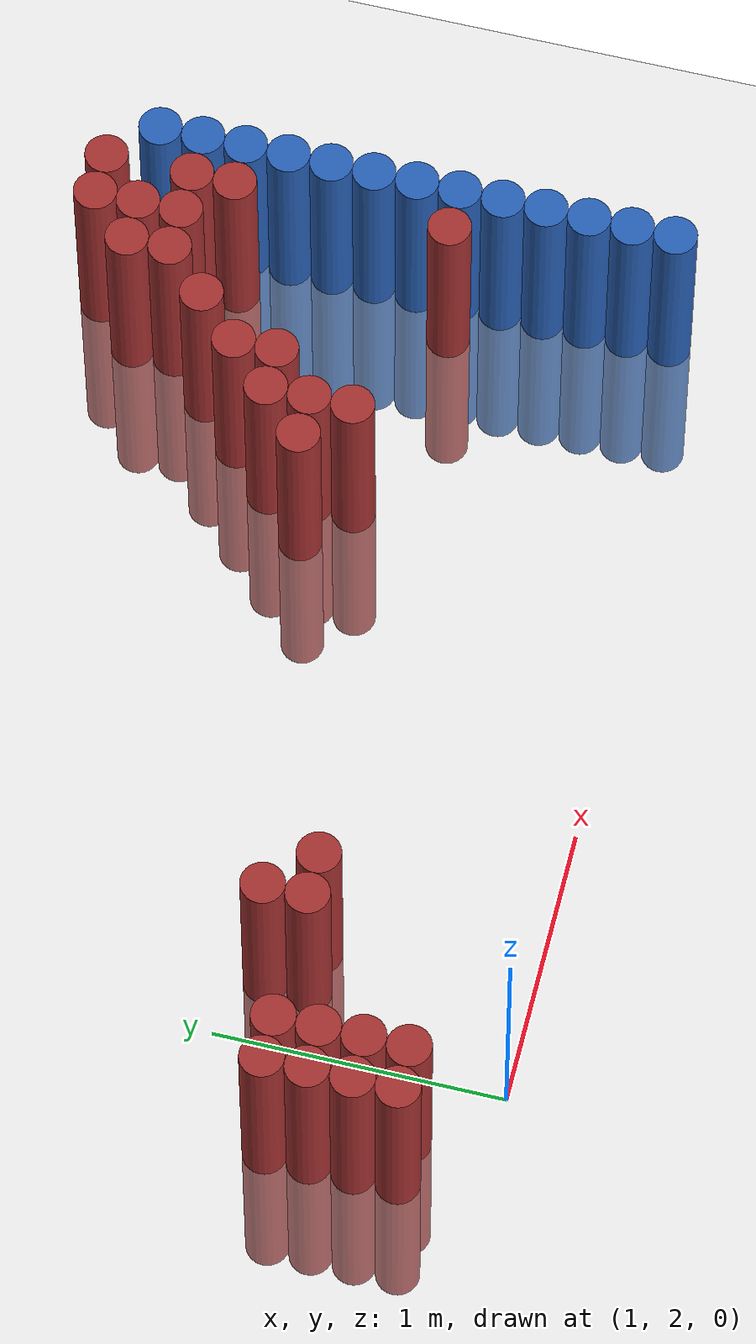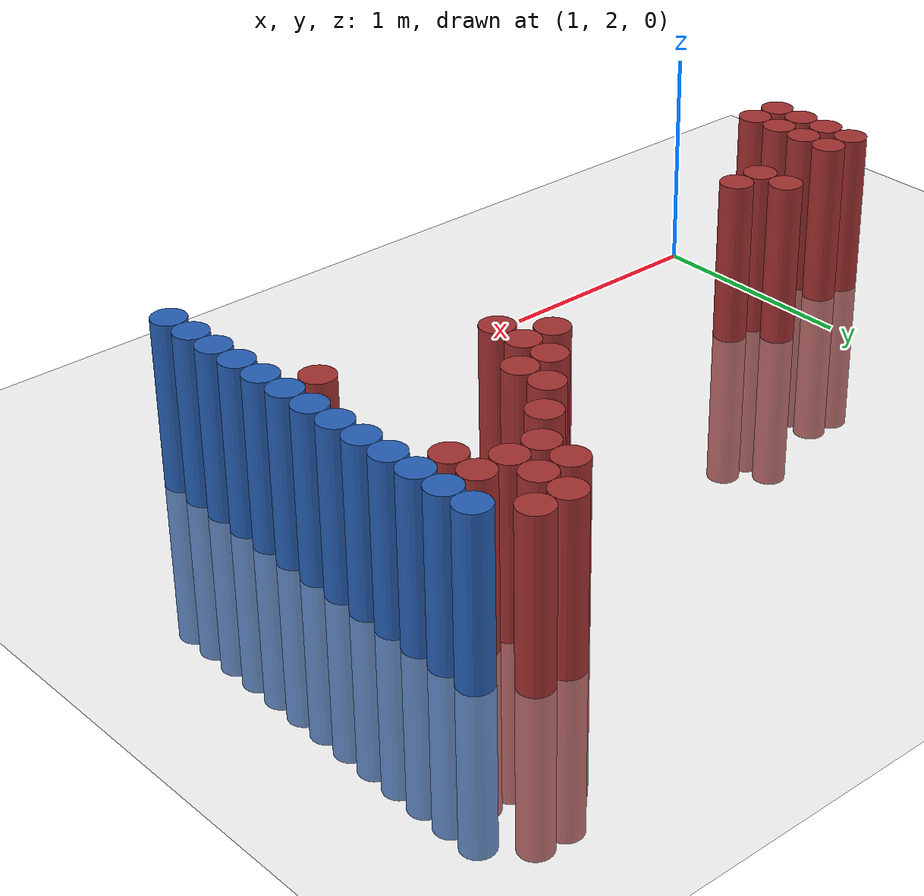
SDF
<sdf version="1.6">
 <world name="default">
  <model name="ground_plane">
   <static>1</static>
   <link name="link">
    <collision name="collision">
     <geometry><plane><normal>0 0 1</normal><size>100 100</size></plane></geometry>
     <surface><friction><ode><mu>100</mu><mu2>50</mu2></ode></friction></surface>
    </collision>
    <visual name="visual">
     <cast_shadows>0</cast_shadows>
     <geometry><plane><normal>0 0 1</normal><size>100 100</size></plane></geometry>
     <material>
      <script><uri>file://media/materials/scripts/gazebo.material</uri><name>Gazebo/Grey</name></script>
     </material>
    </visual>
   </link>
  </model>
  <model name="unit_cylinder_142">
   <static>1</static>
   <pose>3.925000 2.125000 0.000000 0.000000 0.000000 0.000000</pose>
   <link name="link">
    <inertial>
     <mass>1</mass>
     <inertia><ixx>0.145833</ixx><ixy>0</ixy><ixz>0</ixz><iyy>0.145833</iyy><iyz>0</iyz><izz>0.125</izz></inertia>
    </inertial>
    <collision name="collision">
     <geometry><cylinder><radius>0.075000</radius><length>1.5</length></cylinder></geometry>
    </collision>
    <visual name="visual">
     <geometry><cylinder><radius>0.075000</radius><length>1.5</length></cylinder></geometry>
     <material>
      <ambient>0.152000 0.379000 0.720000 1</ambient>
      <diffuse>0.152000 0.379000 0.720000 1</diffuse>
     </material>
     <material>
      <script><name>Gazebo/Grey</name><uri>file://media/materials/scripts/gazebo.material</uri></script>
     </material>
    </visual>
   </link>
  </model>
  <model name="unit_cylinder_144">
   <static>1</static>
   <pose>3.925000 2.275000 0.000000 0.000000 0.000000 0.000000</pose>
   <link name="link">
    <inertial>
     <mass>1</mass>
     <inertia><ixx>0.145833</ixx><ixy>0</ixy><ixz>0</ixz><iyy>0.145833</iyy><iyz>0</iyz><izz>0.125</izz></inertia>
    </inertial>
    <collision name="collision">
     <geometry><cylinder><radius>0.075000</radius><length>1.5</length></cylinder></geometry>
    </collision>
    <visual name="visual">
     <geometry><cylinder><radius>0.075000</radius><length>1.5</length></cylinder></geometry>
     <material>
      <ambient>0.152000 0.379000 0.720000 1</ambient>
      <diffuse>0.152000 0.379000 0.720000 1</diffuse>
     </material>
     <material>
      <script><name>Gazebo/Grey</name><uri>file://media/materials/scripts/gazebo.material</uri></script>
     </material>
    </visual>
   </link>
  </model>
  <model name="unit_cylinder_146">
   <static>1</static>
   <pose>3.925000 2.425000 0.000000 0.000000 0.000000 0.000000</pose>
   <link name="link">
    <inertial>
     <mass>1</mass>
     <inertia><ixx>0.145833</ixx><ixy>0</ixy><ixz>0</ixz><iyy>0.145833</iyy><iyz>0</iyz><izz>0.125</izz></inertia>
    </inertial>
    <collision name="collision">
     <geometry><cylinder><radius>0.075000</radius><length>1.5</length></cylinder></geometry>
    </collision>
    <visual name="visual">
     <geometry><cylinder><radius>0.075000</radius><length>1.5</length></cylinder></geometry>
     <material>
      <ambient>0.152000 0.379000 0.720000 1</ambient>
      <diffuse>0.152000 0.379000 0.720000 1</diffuse>
     </material>
     <material>
      <script><name>Gazebo/Grey</name><uri>file://media/materials/scripts/gazebo.material</uri></script>
     </material>
    </visual>
   </link>
  </model>
  <model name="unit_cylinder_148">
   <static>1</static>
   <pose>3.925000 2.575000 0.000000 0.000000 0.000000 0.000000</pose>
   <link name="link">
    <inertial>
     <mass>1</mass>
     <inertia><ixx>0.145833</ixx><ixy>0</ixy><ixz>0</ixz><iyy>0.145833</iyy><iyz>0</iyz><izz>0.125</izz></inertia>
    </inertial>
    <collision name="collision">
     <geometry><cylinder><radius>0.075000</radius><length>1.5</length></cylinder></geometry>
    </collision>
    <visual name="visual">
     <geometry><cylinder><radius>0.075000</radius><length>1.5</length></cylinder></geometry>
     <material>
      <ambient>0.152000 0.379000 0.720000 1</ambient>
      <diffuse>0.152000 0.379000 0.720000 1</diffuse>
     </material>
     <material>
      <script><name>Gazebo/Grey</name><uri>file://media/materials/scripts/gazebo.material</uri></script>
     </material>
    </visual>
   </link>
  </model>
  <model name="unit_cylinder_150">
   <static>1</static>
   <pose>3.925000 2.725000 0.000000 0.000000 0.000000 0.000000</pose>
   <link name="link">
    <inertial>
     <mass>1</mass>
     <inertia><ixx>0.145833</ixx><ixy>0</ixy><ixz>0</ixz><iyy>0.145833</iyy><iyz>0</iyz><izz>0.125</izz></inertia>
    </inertial>
    <collision name="collision">
     <geometry><cylinder><radius>0.075000</radius><length>1.5</length></cylinder></geometry>
    </collision>
    <visual name="visual">
     <geometry><cylinder><radius>0.075000</radius><length>1.5</length></cylinder></geometry>
     <material>
      <ambient>0.152000 0.379000 0.720000 1</ambient>
      <diffuse>0.152000 0.379000 0.720000 1</diffuse>
     </material>
     <material>
      <script><name>Gazebo/Grey</name><uri>file://media/materials/scripts/gazebo.material</uri></script>
     </material>
    </visual>
   </link>
  </model>
  <model name="unit_cylinder_152">
   <static>1</static>
   <pose>3.925000 2.875000 0.000000 0.000000 0.000000 0.000000</pose>
   <link name="link">
    <inertial>
     <mass>1</mass>
     <inertia><ixx>0.145833</ixx><ixy>0</ixy><ixz>0</ixz><iyy>0.145833</iyy><iyz>0</iyz><izz>0.125</izz></inertia>
    </inertial>
    <collision name="collision">
     <geometry><cylinder><radius>0.075000</radius><length>1.5</length></cylinder></geometry>
    </collision>
    <visual name="visual">
     <geometry><cylinder><radius>0.075000</radius><length>1.5</length></cylinder></geometry>
     <material>
      <ambient>0.152000 0.379000 0.720000 1</ambient>
      <diffuse>0.152000 0.379000 0.720000 1</diffuse>
     </material>
     <material>
      <script><name>Gazebo/Grey</name><uri>file://media/materials/scripts/gazebo.material</uri></script>
     </material>
    </visual>
   </link>
  </model>
  <model name="unit_cylinder_154">
   <static>1</static>
   <pose>3.925000 3.025000 0.000000 0.000000 0.000000 0.000000</pose>
   <link name="link">
    <inertial>
     <mass>1</mass>
     <inertia><ixx>0.145833</ixx><ixy>0</ixy><ixz>0</ixz><iyy>0.145833</iyy><iyz>0</iyz><izz>0.125</izz></inertia>
    </inertial>
    <collision name="collision">
     <geometry><cylinder><radius>0.075000</radius><length>1.5</length></cylinder></geometry>
    </collision>
    <visual name="visual">
     <geometry><cylinder><radius>0.075000</radius><length>1.5</length></cylinder></geometry>
     <material>
      <ambient>0.152000 0.379000 0.720000 1</ambient>
      <diffuse>0.152000 0.379000 0.720000 1</diffuse>
     </material>
     <material>
      <script><name>Gazebo/Grey</name><uri>file://media/materials/scripts/gazebo.material</uri></script>
     </material>
    </visual>
   </link>
  </model>
  <model name="unit_cylinder_156">
   <static>1</static>
   <pose>3.925000 3.175000 0.000000 0.000000 0.000000 0.000000</pose>
   <link name="link">
    <inertial>
     <mass>1</mass>
     <inertia><ixx>0.145833</ixx><ixy>0</ixy><ixz>0</ixz><iyy>0.145833</iyy><iyz>0</iyz><izz>0.125</izz></inertia>
    </inertial>
    <collision name="collision">
     <geometry><cylinder><radius>0.075000</radius><length>1.5</length></cylinder></geometry>
    </collision>
    <visual name="visual">
     <geometry><cylinder><radius>0.075000</radius><length>1.5</length></cylinder></geometry>
     <material>
      <ambient>0.152000 0.379000 0.720000 1</ambient>
      <diffuse>0.152000 0.379000 0.720000 1</diffuse>
     </material>
     <material>
      <script><name>Gazebo/Grey</name><uri>file://media/materials/scripts/gazebo.material</uri></script>
     </material>
    </visual>
   </link>
  </model>
  <model name="unit_cylinder_158">
   <static>1</static>
   <pose>3.925000 3.325000 0.000000 0.000000 0.000000 0.000000</pose>
   <link name="link">
    <inertial>
     <mass>1</mass>
     <inertia><ixx>0.145833</ixx><ixy>0</ixy><ixz>0</ixz><iyy>0.145833</iyy><iyz>0</iyz><izz>0.125</izz></inertia>
    </inertial>
    <collision name="collision">
     <geometry><cylinder><radius>0.075000</radius><length>1.5</length></cylinder></geometry>
    </collision>
    <visual name="visual">
     <geometry><cylinder><radius>0.075000</radius><length>1.5</length></cylinder></geometry>
     <material>
      <ambient>0.152000 0.379000 0.720000 1</ambient>
      <diffuse>0.152000 0.379000 0.720000 1</diffuse>
     </material>
     <material>
      <script><name>Gazebo/Grey</name><uri>file://media/materials/scripts/gazebo.material</uri></script>
     </material>
    </visual>
   </link>
  </model>
  <model name="unit_cylinder_160">
   <static>1</static>
   <pose>3.925000 3.475000 0.000000 0.000000 0.000000 0.000000</pose>
   <link name="link">
    <inertial>
     <mass>1</mass>
     <inertia><ixx>0.145833</ixx><ixy>0</ixy><ixz>0</ixz><iyy>0.145833</iyy><iyz>0</iyz><izz>0.125</izz></inertia>
    </inertial>
    <collision name="collision">
     <geometry><cylinder><radius>0.075000</radius><length>1.5</length></cylinder></geometry>
    </collision>
    <visual name="visual">
     <geometry><cylinder><radius>0.075000</radius><length>1.5</length></cylinder></geometry>
     <material>
      <ambient>0.152000 0.379000 0.720000 1</ambient>
      <diffuse>0.152000 0.379000 0.720000 1</diffuse>
     </material>
     <material>
      <script><name>Gazebo/Grey</name><uri>file://media/materials/scripts/gazebo.material</uri></script>
     </material>
    </visual>
   </link>
  </model>
  <model name="unit_cylinder_162">
   <static>1</static>
   <pose>3.925000 3.625000 0.000000 0.000000 0.000000 0.000000</pose>
   <link name="link">
    <inertial>
     <mass>1</mass>
     <inertia><ixx>0.145833</ixx><ixy>0</ixy><ixz>0</ixz><iyy>0.145833</iyy><iyz>0</iyz><izz>0.125</izz></inertia>
    </inertial>
    <collision name="collision">
     <geometry><cylinder><radius>0.075000</radius><length>1.5</length></cylinder></geometry>
    </collision>
    <visual name="visual">
     <geometry><cylinder><radius>0.075000</radius><length>1.5</length></cylinder></geometry>
     <material>
      <ambient>0.152000 0.379000 0.720000 1</ambient>
      <diffuse>0.152000 0.379000 0.720000 1</diffuse>
     </material>
     <material>
      <script><name>Gazebo/Grey</name><uri>file://media/materials/scripts/gazebo.material</uri></script>
     </material>
    </visual>
   </link>
  </model>
  <model name="unit_cylinder_164">
   <static>1</static>
   <pose>3.925000 3.775000 0.000000 0.000000 0.000000 0.000000</pose>
   <link name="link">
    <inertial>
     <mass>1</mass>
     <inertia><ixx>0.145833</ixx><ixy>0</ixy><ixz>0</ixz><iyy>0.145833</iyy><iyz>0</iyz><izz>0.125</izz></inertia>
    </inertial>
    <collision name="collision">
     <geometry><cylinder><radius>0.075000</radius><length>1.5</length></cylinder></geometry>
    </collision>
    <visual name="visual">
     <geometry><cylinder><radius>0.075000</radius><length>1.5</length></cylinder></geometry>
     <material>
      <ambient>0.152000 0.379000 0.720000 1</ambient>
      <diffuse>0.152000 0.379000 0.720000 1</diffuse>
     </material>
     <material>
      <script><name>Gazebo/Grey</name><uri>file://media/materials/scripts/gazebo.material</uri></script>
     </material>
    </visual>
   </link>
  </model>
  <model name="unit_cylinder_166">
   <static>1</static>
   <pose>3.925000 3.925000 0.000000 0.000000 0.000000 0.000000</pose>
   <link name="link">
    <inertial>
     <mass>1</mass>
     <inertia><ixx>0.145833</ixx><ixy>0</ixy><ixz>0</ixz><iyy>0.145833</iyy><iyz>0</iyz><izz>0.125</izz></inertia>
    </inertial>
    <collision name="collision">
     <geometry><cylinder><radius>0.075000</radius><length>1.5</length></cylinder></geometry>
    </collision>
    <visual name="visual">
     <geometry><cylinder><radius>0.075000</radius><length>1.5</length></cylinder></geometry>
     <material>
      <ambient>0.152000 0.379000 0.720000 1</ambient>
      <diffuse>0.152000 0.379000 0.720000 1</diffuse>
     </material>
     <material>
      <script><name>Gazebo/Grey</name><uri>file://media/materials/scripts/gazebo.material</uri></script>
     </material>
    </visual>
   </link>
  </model>
  <model name="unit_cylinder_389">
   <static>1</static>
   <pose>0.625000 2.275000 0.000000 0.000000 0.000000 0.000000</pose>
   <link name="link">
    <inertial>
     <mass>1</mass>
     <inertia><ixx>0.145833</ixx><ixy>0</ixy><ixz>0</ixz><iyy>0.145833</iyy><iyz>0</iyz><izz>0.125</izz></inertia>
    </inertial>
    <collision name="collision">
     <geometry><cylinder><radius>0.075000</radius><length>1.5</length></cylinder></geometry>
    </collision>
    <visual name="visual">
     <geometry><cylinder><radius>0.075000</radius><length>1.5</length></cylinder></geometry>
     <material>
      <ambient>0.648000 0.192000 0.192000 1</ambient>
      <diffuse>0.648000 0.192000 0.192000 1</diffuse>
     </material>
     <material>
      <script><name>Gazebo/Grey</name><uri>file://media/materials/scripts/gazebo.material</uri></script>
     </material>
    </visual>
   </link>
  </model>
  <model name="unit_cylinder_390">
   <static>1</static>
   <pose>0.625000 2.425000 0.000000 0.000000 0.000000 0.000000</pose>
   <link name="link">
    <inertial>
     <mass>1</mass>
     <inertia><ixx>0.145833</ixx><ixy>0</ixy><ixz>0</ixz><iyy>0.145833</iyy><iyz>0</iyz><izz>0.125</izz></inertia>
    </inertial>
    <collision name="collision">
     <geometry><cylinder><radius>0.075000</radius><length>1.5</length></cylinder></geometry>
    </collision>
    <visual name="visual">
     <geometry><cylinder><radius>0.075000</radius><length>1.5</length></cylinder></geometry>
     <material>
      <ambient>0.648000 0.192000 0.192000 1</ambient>
      <diffuse>0.648000 0.192000 0.192000 1</diffuse>
     </material>
     <material>
      <script><name>Gazebo/Grey</name><uri>file://media/materials/scripts/gazebo.material</uri></script>
     </material>
    </visual>
   </link>
  </model>
  <model name="unit_cylinder_391">
   <static>1</static>
   <pose>0.625000 2.575000 0.000000 0.000000 0.000000 0.000000</pose>
   <link name="link">
    <inertial>
     <mass>1</mass>
     <inertia><ixx>0.145833</ixx><ixy>0</ixy><ixz>0</ixz><iyy>0.145833</iyy><iyz>0</iyz><izz>0.125</izz></inertia>
    </inertial>
    <collision name="collision">
     <geometry><cylinder><radius>0.075000</radius><length>1.5</length></cylinder></geometry>
    </collision>
    <visual name="visual">
     <geometry><cylinder><radius>0.075000</radius><length>1.5</length></cylinder></geometry>
     <material>
      <ambient>0.648000 0.192000 0.192000 1</ambient>
      <diffuse>0.648000 0.192000 0.192000 1</diffuse>
     </material>
     <material>
      <script><name>Gazebo/Grey</name><uri>file://media/materials/scripts/gazebo.material</uri></script>
     </material>
    </visual>
   </link>
  </model>
  <model name="unit_cylinder_392">
   <static>1</static>
   <pose>0.625000 2.725000 0.000000 0.000000 0.000000 0.000000</pose>
   <link name="link">
    <inertial>
     <mass>1</mass>
     <inertia><ixx>0.145833</ixx><ixy>0</ixy><ixz>0</ixz><iyy>0.145833</iyy><iyz>0</iyz><izz>0.125</izz></inertia>
    </inertial>
    <collision name="collision">
     <geometry><cylinder><radius>0.075000</radius><length>1.5</length></cylinder></geometry>
    </collision>
    <visual name="visual">
     <geometry><cylinder><radius>0.075000</radius><length>1.5</length></cylinder></geometry>
     <material>
      <ambient>0.648000 0.192000 0.192000 1</ambient>
      <diffuse>0.648000 0.192000 0.192000 1</diffuse>
     </material>
     <material>
      <script><name>Gazebo/Grey</name><uri>file://media/materials/scripts/gazebo.material</uri></script>
     </material>
    </visual>
   </link>
  </model>
  <model name="unit_cylinder_397">
   <static>1</static>
   <pose>0.775000 2.275000 0.000000 0.000000 0.000000 0.000000</pose>
   <link name="link">
    <inertial>
     <mass>1</mass>
     <inertia><ixx>0.145833</ixx><ixy>0</ixy><ixz>0</ixz><iyy>0.145833</iyy><iyz>0</iyz><izz>0.125</izz></inertia>
    </inertial>
    <collision name="collision">
     <geometry><cylinder><radius>0.075000</radius><length>1.5</length></cylinder></geometry>
    </collision>
    <visual name="visual">
     <geometry><cylinder><radius>0.075000</radius><length>1.5</length></cylinder></geometry>
     <material>
      <ambient>0.648000 0.192000 0.192000 1</ambient>
      <diffuse>0.648000 0.192000 0.192000 1</diffuse>
     </material>
     <material>
      <script><name>Gazebo/Grey</name><uri>file://media/materials/scripts/gazebo.material</uri></script>
     </material>
    </visual>
   </link>
  </model>
  <model name="unit_cylinder_398">
   <static>1</static>
   <pose>0.775000 2.425000 0.000000 0.000000 0.000000 0.000000</pose>
   <link name="link">
    <inertial>
     <mass>1</mass>
     <inertia><ixx>0.145833</ixx><ixy>0</ixy><ixz>0</ixz><iyy>0.145833</iyy><iyz>0</iyz><izz>0.125</izz></inertia>
    </inertial>
    <collision name="collision">
     <geometry><cylinder><radius>0.075000</radius><length>1.5</length></cylinder></geometry>
    </collision>
    <visual name="visual">
     <geometry><cylinder><radius>0.075000</radius><length>1.5</length></cylinder></geometry>
     <material>
      <ambient>0.648000 0.192000 0.192000 1</ambient>
      <diffuse>0.648000 0.192000 0.192000 1</diffuse>
     </material>
     <material>
      <script><name>Gazebo/Grey</name><uri>file://media/materials/scripts/gazebo.material</uri></script>
     </material>
    </visual>
   </link>
  </model>
  <model name="unit_cylinder_399">
   <static>1</static>
   <pose>0.775000 2.575000 0.000000 0.000000 0.000000 0.000000</pose>
   <link name="link">
    <inertial>
     <mass>1</mass>
     <inertia><ixx>0.145833</ixx><ixy>0</ixy><ixz>0</ixz><iyy>0.145833</iyy><iyz>0</iyz><izz>0.125</izz></inertia>
    </inertial>
    <collision name="collision">
     <geometry><cylinder><radius>0.075000</radius><length>1.5</length></cylinder></geometry>
    </collision>
    <visual name="visual">
     <geometry><cylinder><radius>0.075000</radius><length>1.5</length></cylinder></geometry>
     <material>
      <ambient>0.648000 0.192000 0.192000 1</ambient>
      <diffuse>0.648000 0.192000 0.192000 1</diffuse>
     </material>
     <material>
      <script><name>Gazebo/Grey</name><uri>file://media/materials/scripts/gazebo.material</uri></script>
     </material>
    </visual>
   </link>
  </model>
  <model name="unit_cylinder_400">
   <static>1</static>
   <pose>0.775000 2.725000 0.000000 0.000000 0.000000 0.000000</pose>
   <link name="link">
    <inertial>
     <mass>1</mass>
     <inertia><ixx>0.145833</ixx><ixy>0</ixy><ixz>0</ixz><iyy>0.145833</iyy><iyz>0</iyz><izz>0.125</izz></inertia>
    </inertial>
    <collision name="collision">
     <geometry><cylinder><radius>0.075000</radius><length>1.5</length></cylinder></geometry>
    </collision>
    <visual name="visual">
     <geometry><cylinder><radius>0.075000</radius><length>1.5</length></cylinder></geometry>
     <material>
      <ambient>0.648000 0.192000 0.192000 1</ambient>
      <diffuse>0.648000 0.192000 0.192000 1</diffuse>
     </material>
     <material>
      <script><name>Gazebo/Grey</name><uri>file://media/materials/scripts/gazebo.material</uri></script>
     </material>
    </visual>
   </link>
  </model>
  <model name="unit_cylinder_413">
   <static>1</static>
   <pose>1.225000 2.725000 0.000000 0.000000 0.000000 0.000000</pose>
   <link name="link">
    <inertial>
     <mass>1</mass>
     <inertia><ixx>0.145833</ixx><ixy>0</ixy><ixz>0</ixz><iyy>0.145833</iyy><iyz>0</iyz><izz>0.125</izz></inertia>
    </inertial>
    <collision name="collision">
     <geometry><cylinder><radius>0.075000</radius><length>1.5</length></cylinder></geometry>
    </collision>
    <visual name="visual">
     <geometry><cylinder><radius>0.075000</radius><length>1.5</length></cylinder></geometry>
     <material>
      <ambient>0.648000 0.192000 0.192000 1</ambient>
      <diffuse>0.648000 0.192000 0.192000 1</diffuse>
     </material>
     <material>
      <script><name>Gazebo/Grey</name><uri>file://media/materials/scripts/gazebo.material</uri></script>
     </material>
    </visual>
   </link>
  </model>
  <model name="unit_cylinder_414">
   <static>1</static>
   <pose>1.225000 2.875000 0.000000 0.000000 0.000000 0.000000</pose>
   <link name="link">
    <inertial>
     <mass>1</mass>
     <inertia><ixx>0.145833</ixx><ixy>0</ixy><ixz>0</ixz><iyy>0.145833</iyy><iyz>0</iyz><izz>0.125</izz></inertia>
    </inertial>
    <collision name="collision">
     <geometry><cylinder><radius>0.075000</radius><length>1.5</length></cylinder></geometry>
    </collision>
    <visual name="visual">
     <geometry><cylinder><radius>0.075000</radius><length>1.5</length></cylinder></geometry>
     <material>
      <ambient>0.648000 0.192000 0.192000 1</ambient>
      <diffuse>0.648000 0.192000 0.192000 1</diffuse>
     </material>
     <material>
      <script><name>Gazebo/Grey</name><uri>file://media/materials/scripts/gazebo.material</uri></script>
     </material>
    </visual>
   </link>
  </model>
  <model name="unit_cylinder_419">
   <static>1</static>
   <pose>1.375000 2.725000 0.000000 0.000000 0.000000 0.000000</pose>
   <link name="link">
    <inertial>
     <mass>1</mass>
     <inertia><ixx>0.145833</ixx><ixy>0</ixy><ixz>0</ixz><iyy>0.145833</iyy><iyz>0</iyz><izz>0.125</izz></inertia>
    </inertial>
    <collision name="collision">
     <geometry><cylinder><radius>0.075000</radius><length>1.5</length></cylinder></geometry>
    </collision>
    <visual name="visual">
     <geometry><cylinder><radius>0.075000</radius><length>1.5</length></cylinder></geometry>
     <material>
      <ambient>0.648000 0.192000 0.192000 1</ambient>
      <diffuse>0.648000 0.192000 0.192000 1</diffuse>
     </material>
     <material>
      <script><name>Gazebo/Grey</name><uri>file://media/materials/scripts/gazebo.material</uri></script>
     </material>
    </visual>
   </link>
  </model>
  <model name="unit_cylinder_457">
   <static>1</static>
   <pose>2.875000 3.175000 0.000000 0.000000 0.000000 0.000000</pose>
   <link name="link">
    <inertial>
     <mass>1</mass>
     <inertia><ixx>0.145833</ixx><ixy>0</ixy><ixz>0</ixz><iyy>0.145833</iyy><iyz>0</iyz><izz>0.125</izz></inertia>
    </inertial>
    <collision name="collision">
     <geometry><cylinder><radius>0.075000</radius><length>1.5</length></cylinder></geometry>
    </collision>
    <visual name="visual">
     <geometry><cylinder><radius>0.075000</radius><length>1.5</length></cylinder></geometry>
     <material>
      <ambient>0.648000 0.192000 0.192000 1</ambient>
      <diffuse>0.648000 0.192000 0.192000 1</diffuse>
     </material>
     <material>
      <script><name>Gazebo/Grey</name><uri>file://media/materials/scripts/gazebo.material</uri></script>
     </material>
    </visual>
   </link>
  </model>
  <model name="unit_cylinder_461">
   <static>1</static>
   <pose>3.025000 3.025000 0.000000 0.000000 0.000000 0.000000</pose>
   <link name="link">
    <inertial>
     <mass>1</mass>
     <inertia><ixx>0.145833</ixx><ixy>0</ixy><ixz>0</ixz><iyy>0.145833</iyy><iyz>0</iyz><izz>0.125</izz></inertia>
    </inertial>
    <collision name="collision">
     <geometry><cylinder><radius>0.075000</radius><length>1.5</length></cylinder></geometry>
    </collision>
    <visual name="visual">
     <geometry><cylinder><radius>0.075000</radius><length>1.5</length></cylinder></geometry>
     <material>
      <ambient>0.648000 0.192000 0.192000 1</ambient>
      <diffuse>0.648000 0.192000 0.192000 1</diffuse>
     </material>
     <material>
      <script><name>Gazebo/Grey</name><uri>file://media/materials/scripts/gazebo.material</uri></script>
     </material>
    </visual>
   </link>
  </model>
  <model name="unit_cylinder_462">
   <static>1</static>
   <pose>3.025000 3.175000 0.000000 0.000000 0.000000 0.000000</pose>
   <link name="link">
    <inertial>
     <mass>1</mass>
     <inertia><ixx>0.145833</ixx><ixy>0</ixy><ixz>0</ixz><iyy>0.145833</iyy><iyz>0</iyz><izz>0.125</izz></inertia>
    </inertial>
    <collision name="collision">
     <geometry><cylinder><radius>0.075000</radius><length>1.5</length></cylinder></geometry>
    </collision>
    <visual name="visual">
     <geometry><cylinder><radius>0.075000</radius><length>1.5</length></cylinder></geometry>
     <material>
      <ambient>0.648000 0.192000 0.192000 1</ambient>
      <diffuse>0.648000 0.192000 0.192000 1</diffuse>
     </material>
     <material>
      <script><name>Gazebo/Grey</name><uri>file://media/materials/scripts/gazebo.material</uri></script>
     </material>
    </visual>
   </link>
  </model>
  <model name="unit_cylinder_463">
   <static>1</static>
   <pose>3.025000 3.325000 0.000000 0.000000 0.000000 0.000000</pose>
   <link name="link">
    <inertial>
     <mass>1</mass>
     <inertia><ixx>0.145833</ixx><ixy>0</ixy><ixz>0</ixz><iyy>0.145833</iyy><iyz>0</iyz><izz>0.125</izz></inertia>
    </inertial>
    <collision name="collision">
     <geometry><cylinder><radius>0.075000</radius><length>1.5</length></cylinder></geometry>
    </collision>
    <visual name="visual">
     <geometry><cylinder><radius>0.075000</radius><length>1.5</length></cylinder></geometry>
     <material>
      <ambient>0.648000 0.192000 0.192000 1</ambient>
      <diffuse>0.648000 0.192000 0.192000 1</diffuse>
     </material>
     <material>
      <script><name>Gazebo/Grey</name><uri>file://media/materials/scripts/gazebo.material</uri></script>
     </material>
    </visual>
   </link>
  </model>
  <model name="unit_cylinder_472">
   <static>1</static>
   <pose>3.175000 3.325000 0.000000 0.000000 0.000000 0.000000</pose>
   <link name="link">
    <inertial>
     <mass>1</mass>
     <inertia><ixx>0.145833</ixx><ixy>0</ixy><ixz>0</ixz><iyy>0.145833</iyy><iyz>0</iyz><izz>0.125</izz></inertia>
    </inertial>
    <collision name="collision">
     <geometry><cylinder><radius>0.075000</radius><length>1.5</length></cylinder></geometry>
    </collision>
    <visual name="visual">
     <geometry><cylinder><radius>0.075000</radius><length>1.5</length></cylinder></geometry>
     <material>
      <ambient>0.648000 0.192000 0.192000 1</ambient>
      <diffuse>0.648000 0.192000 0.192000 1</diffuse>
     </material>
     <material>
      <script><name>Gazebo/Grey</name><uri>file://media/materials/scripts/gazebo.material</uri></script>
     </material>
    </visual>
   </link>
  </model>
  <model name="unit_cylinder_473">
   <static>1</static>
   <pose>3.175000 3.475000 0.000000 0.000000 0.000000 0.000000</pose>
   <link name="link">
    <inertial>
     <mass>1</mass>
     <inertia><ixx>0.145833</ixx><ixy>0</ixy><ixz>0</ixz><iyy>0.145833</iyy><iyz>0</iyz><izz>0.125</izz></inertia>
    </inertial>
    <collision name="collision">
     <geometry><cylinder><radius>0.075000</radius><length>1.5</length></cylinder></geometry>
    </collision>
    <visual name="visual">
     <geometry><cylinder><radius>0.075000</radius><length>1.5</length></cylinder></geometry>
     <material>
      <ambient>0.648000 0.192000 0.192000 1</ambient>
      <diffuse>0.648000 0.192000 0.192000 1</diffuse>
     </material>
     <material>
      <script><name>Gazebo/Grey</name><uri>file://media/materials/scripts/gazebo.material</uri></script>
     </material>
    </visual>
   </link>
  </model>
  <model name="unit_cylinder_480">
   <static>1</static>
   <pose>3.325000 3.625000 0.000000 0.000000 0.000000 0.000000</pose>
   <link name="link">
    <inertial>
     <mass>1</mass>
     <inertia><ixx>0.145833</ixx><ixy>0</ixy><ixz>0</ixz><iyy>0.145833</iyy><iyz>0</iyz><izz>0.125</izz></inertia>
    </inertial>
    <collision name="collision">
     <geometry><cylinder><radius>0.075000</radius><length>1.5</length></cylinder></geometry>
    </collision>
    <visual name="visual">
     <geometry><cylinder><radius>0.075000</radius><length>1.5</length></cylinder></geometry>
     <material>
      <ambient>0.648000 0.192000 0.192000 1</ambient>
      <diffuse>0.648000 0.192000 0.192000 1</diffuse>
     </material>
     <material>
      <script><name>Gazebo/Grey</name><uri>file://media/materials/scripts/gazebo.material</uri></script>
     </material>
    </visual>
   </link>
  </model>
  <model name="unit_cylinder_485">
   <static>1</static>
   <pose>3.475000 3.775000 0.000000 0.000000 0.000000 0.000000</pose>
   <link name="link">
    <inertial>
     <mass>1</mass>
     <inertia><ixx>0.145833</ixx><ixy>0</ixy><ixz>0</ixz><iyy>0.145833</iyy><iyz>0</iyz><izz>0.125</izz></inertia>
    </inertial>
    <collision name="collision">
     <geometry><cylinder><radius>0.075000</radius><length>1.5</length></cylinder></geometry>
    </collision>
    <visual name="visual">
     <geometry><cylinder><radius>0.075000</radius><length>1.5</length></cylinder></geometry>
     <material>
      <ambient>0.648000 0.192000 0.192000 1</ambient>
      <diffuse>0.648000 0.192000 0.192000 1</diffuse>
     </material>
     <material>
      <script><name>Gazebo/Grey</name><uri>file://media/materials/scripts/gazebo.material</uri></script>
     </material>
    </visual>
   </link>
  </model>
  <model name="unit_cylinder_486">
   <static>1</static>
   <pose>3.475000 3.925000 0.000000 0.000000 0.000000 0.000000</pose>
   <link name="link">
    <inertial>
     <mass>1</mass>
     <inertia><ixx>0.145833</ixx><ixy>0</ixy><ixz>0</ixz><iyy>0.145833</iyy><iyz>0</iyz><izz>0.125</izz></inertia>
    </inertial>
    <collision name="collision">
     <geometry><cylinder><radius>0.075000</radius><length>1.5</length></cylinder></geometry>
    </collision>
    <visual name="visual">
     <geometry><cylinder><radius>0.075000</radius><length>1.5</length></cylinder></geometry>
     <material>
      <ambient>0.648000 0.192000 0.192000 1</ambient>
      <diffuse>0.648000 0.192000 0.192000 1</diffuse>
     </material>
     <material>
      <script><name>Gazebo/Grey</name><uri>file://media/materials/scripts/gazebo.material</uri></script>
     </material>
    </visual>
   </link>
  </model>
  <model name="unit_cylinder_494">
   <static>1</static>
   <pose>3.625000 3.775000 0.000000 0.000000 0.000000 0.000000</pose>
   <link name="link">
    <inertial>
     <mass>1</mass>
     <inertia><ixx>0.145833</ixx><ixy>0</ixy><ixz>0</ixz><iyy>0.145833</iyy><iyz>0</iyz><izz>0.125</izz></inertia>
    </inertial>
    <collision name="collision">
     <geometry><cylinder><radius>0.075000</radius><length>1.5</length></cylinder></geometry>
    </collision>
    <visual name="visual">
     <geometry><cylinder><radius>0.075000</radius><length>1.5</length></cylinder></geometry>
     <material>
      <ambient>0.648000 0.192000 0.192000 1</ambient>
      <diffuse>0.648000 0.192000 0.192000 1</diffuse>
     </material>
     <material>
      <script><name>Gazebo/Grey</name><uri>file://media/materials/scripts/gazebo.material</uri></script>
     </material>
    </visual>
   </link>
  </model>
  <model name="unit_cylinder_495">
   <static>1</static>
   <pose>3.625000 3.925000 0.000000 0.000000 0.000000 0.000000</pose>
   <link name="link">
    <inertial>
     <mass>1</mass>
     <inertia><ixx>0.145833</ixx><ixy>0</ixy><ixz>0</ixz><iyy>0.145833</iyy><iyz>0</iyz><izz>0.125</izz></inertia>
    </inertial>
    <collision name="collision">
     <geometry><cylinder><radius>0.075000</radius><length>1.5</length></cylinder></geometry>
    </collision>
    <visual name="visual">
     <geometry><cylinder><radius>0.075000</radius><length>1.5</length></cylinder></geometry>
     <material>
      <ambient>0.648000 0.192000 0.192000 1</ambient>
      <diffuse>0.648000 0.192000 0.192000 1</diffuse>
     </material>
     <material>
      <script><name>Gazebo/Grey</name><uri>file://media/materials/scripts/gazebo.material</uri></script>
     </material>
    </visual>
   </link>
  </model>
  <model name="unit_cylinder_496">
   <static>1</static>
   <pose>3.625000 4.075000 0.000000 0.000000 0.000000 0.000000</pose>
   <link name="link">
    <inertial>
     <mass>1</mass>
     <inertia><ixx>0.145833</ixx><ixy>0</ixy><ixz>0</ixz><iyy>0.145833</iyy><iyz>0</iyz><izz>0.125</izz></inertia>
    </inertial>
    <collision name="collision">
     <geometry><cylinder><radius>0.075000</radius><length>1.5</length></cylinder></geometry>
    </collision>
    <visual name="visual">
     <geometry><cylinder><radius>0.075000</radius><length>1.5</length></cylinder></geometry>
     <material>
      <ambient>0.648000 0.192000 0.192000 1</ambient>
      <diffuse>0.648000 0.192000 0.192000 1</diffuse>
     </material>
     <material>
      <script><name>Gazebo/Grey</name><uri>file://media/materials/scripts/gazebo.material</uri></script>
     </material>
    </visual>
   </link>
  </model>
  <model name="unit_cylinder_522">
   <static>1</static>
   <pose>3.775000 2.875000 0.000000 0.000000 0.000000 0.000000</pose>
   <link name="link">
    <inertial>
     <mass>1</mass>
     <inertia><ixx>0.145833</ixx><ixy>0</ixy><ixz>0</ixz><iyy>0.145833</iyy><iyz>0</iyz><izz>0.125</izz></inertia>
    </inertial>
    <collision name="collision">
     <geometry><cylinder><radius>0.075000</radius><length>1.5</length></cylinder></geometry>
    </collision>
    <visual name="visual">
     <geometry><cylinder><radius>0.075000</radius><length>1.5</length></cylinder></geometry>
     <material>
      <ambient>0.648000 0.192000 0.192000 1</ambient>
      <diffuse>0.648000 0.192000 0.192000 1</diffuse>
     </material>
     <material>
      <script><name>Gazebo/Grey</name><uri>file://media/materials/scripts/gazebo.material</uri></script>
     </material>
    </visual>
   </link>
  </model>
  <model name="unit_cylinder_523">
   <static>1</static>
   <pose>3.775000 3.625000 0.000000 0.000000 0.000000 0.000000</pose>
   <link name="link">
    <inertial>
     <mass>1</mass>
     <inertia><ixx>0.145833</ixx><ixy>0</ixy><ixz>0</ixz><iyy>0.145833</iyy><iyz>0</iyz><izz>0.125</izz></inertia>
    </inertial>
    <collision name="collision">
     <geometry><cylinder><radius>0.075000</radius><length>1.5</length></cylinder></geometry>
    </collision>
    <visual name="visual">
     <geometry><cylinder><radius>0.075000</radius><length>1.5</length></cylinder></geometry>
     <material>
      <ambient>0.648000 0.192000 0.192000 1</ambient>
      <diffuse>0.648000 0.192000 0.192000 1</diffuse>
     </material>
     <material>
      <script><name>Gazebo/Grey</name><uri>file://media/materials/scripts/gazebo.material</uri></script>
     </material>
    </visual>
   </link>
  </model>
  <model name="unit_cylinder_524">
   <static>1</static>
   <pose>3.775000 3.775000 0.000000 0.000000 0.000000 0.000000</pose>
   <link name="link">
    <inertial>
     <mass>1</mass>
     <inertia><ixx>0.145833</ixx><ixy>0</ixy><ixz>0</ixz><iyy>0.145833</iyy><iyz>0</iyz><izz>0.125</izz></inertia>
    </inertial>
    <collision name="collision">
     <geometry><cylinder><radius>0.075000</radius><length>1.5</length></cylinder></geometry>
    </collision>
    <visual name="visual">
     <geometry><cylinder><radius>0.075000</radius><length>1.5</length></cylinder></geometry>
     <material>
      <ambient>0.648000 0.192000 0.192000 1</ambient>
      <diffuse>0.648000 0.192000 0.192000 1</diffuse>
     </material>
     <material>
      <script><name>Gazebo/Grey</name><uri>file://media/materials/scripts/gazebo.material</uri></script>
     </material>
    </visual>
   </link>
  </model>
  <model name="unit_cylinder_525">
   <static>1</static>
   <pose>3.775000 4.075000 0.000000 0.000000 0.000000 0.000000</pose>
   <link name="link">
    <inertial>
     <mass>1</mass>
     <inertia><ixx>0.145833</ixx><ixy>0</ixy><ixz>0</ixz><iyy>0.145833</iyy><iyz>0</iyz><izz>0.125</izz></inertia>
    </inertial>
    <collision name="collision">
     <geometry><cylinder><radius>0.075000</radius><length>1.5</length></cylinder></geometry>
    </collision>
    <visual name="visual">
     <geometry><cylinder><radius>0.075000</radius><length>1.5</length></cylinder></geometry>
     <material>
      <ambient>0.648000 0.192000 0.192000 1</ambient>
      <diffuse>0.648000 0.192000 0.192000 1</diffuse>
     </material>
     <material>
      <script><name>Gazebo/Grey</name><uri>file://media/materials/scripts/gazebo.material</uri></script>
     </material>
    </visual>
   </link>
  </model>
  <model name="unit_cylinder_558">
   <static>1</static>
   <pose>3.925000 2.125000 0.000000 0.000000 0.000000 0.000000</pose>
   <link name="link">
    <inertial>
     <mass>1</mass>
     <inertia><ixx>0.145833</ixx><ixy>0</ixy><ixz>0</ixz><iyy>0.145833</iyy><iyz>0</iyz><izz>0.125</izz></inertia>
    </inertial>
    <collision name="collision">
     <geometry><cylinder><radius>0.075000</radius><length>1.5</length></cylinder></geometry>
    </collision>
    <visual name="visual">
     <geometry><cylinder><radius>0.075000</radius><length>1.5</length></cylinder></geometry>
     <material>
      <ambient>0.152000 0.379000 0.720000 1</ambient>
      <diffuse>0.152000 0.379000 0.720000 1</diffuse>
     </material>
     <material>
      <script><name>Gazebo/Grey</name><uri>file://media/materials/scripts/gazebo.material</uri></script>
     </material>
    </visual>
   </link>
  </model>
  <model name="unit_cylinder_559">
   <static>1</static>
   <pose>3.925000 2.275000 0.000000 0.000000 0.000000 0.000000</pose>
   <link name="link">
    <inertial>
     <mass>1</mass>
     <inertia><ixx>0.145833</ixx><ixy>0</ixy><ixz>0</ixz><iyy>0.145833</iyy><iyz>0</iyz><izz>0.125</izz></inertia>
    </inertial>
    <collision name="collision">
     <geometry><cylinder><radius>0.075000</radius><length>1.5</length></cylinder></geometry>
    </collision>
    <visual name="visual">
     <geometry><cylinder><radius>0.075000</radius><length>1.5</length></cylinder></geometry>
     <material>
      <ambient>0.152000 0.379000 0.720000 1</ambient>
      <diffuse>0.152000 0.379000 0.720000 1</diffuse>
     </material>
     <material>
      <script><name>Gazebo/Grey</name><uri>file://media/materials/scripts/gazebo.material</uri></script>
     </material>
    </visual>
   </link>
  </model>
  <model name="unit_cylinder_560">
   <static>1</static>
   <pose>3.925000 2.425000 0.000000 0.000000 0.000000 0.000000</pose>
   <link name="link">
    <inertial>
     <mass>1</mass>
     <inertia><ixx>0.145833</ixx><ixy>0</ixy><ixz>0</ixz><iyy>0.145833</iyy><iyz>0</iyz><izz>0.125</izz></inertia>
    </inertial>
    <collision name="collision">
     <geometry><cylinder><radius>0.075000</radius><length>1.5</length></cylinder></geometry>
    </collision>
    <visual name="visual">
     <geometry><cylinder><radius>0.075000</radius><length>1.5</length></cylinder></geometry>
     <material>
      <ambient>0.152000 0.379000 0.720000 1</ambient>
      <diffuse>0.152000 0.379000 0.720000 1</diffuse>
     </material>
     <material>
      <script><name>Gazebo/Grey</name><uri>file://media/materials/scripts/gazebo.material</uri></script>
     </material>
    </visual>
   </link>
  </model>
  <model name="unit_cylinder_561">
   <static>1</static>
   <pose>3.925000 2.575000 0.000000 0.000000 0.000000 0.000000</pose>
   <link name="link">
    <inertial>
     <mass>1</mass>
     <inertia><ixx>0.145833</ixx><ixy>0</ixy><ixz>0</ixz><iyy>0.145833</iyy><iyz>0</iyz><izz>0.125</izz></inertia>
    </inertial>
    <collision name="collision">
     <geometry><cylinder><radius>0.075000</radius><length>1.5</length></cylinder></geometry>
    </collision>
    <visual name="visual">
     <geometry><cylinder><radius>0.075000</radius><length>1.5</length></cylinder></geometry>
     <material>
      <ambient>0.152000 0.379000 0.720000 1</ambient>
      <diffuse>0.152000 0.379000 0.720000 1</diffuse>
     </material>
     <material>
      <script><name>Gazebo/Grey</name><uri>file://media/materials/scripts/gazebo.material</uri></script>
     </material>
    </visual>
   </link>
  </model>
  <model name="unit_cylinder_562">
   <static>1</static>
   <pose>3.925000 2.725000 0.000000 0.000000 0.000000 0.000000</pose>
   <link name="link">
    <inertial>
     <mass>1</mass>
     <inertia><ixx>0.145833</ixx><ixy>0</ixy><ixz>0</ixz><iyy>0.145833</iyy><iyz>0</iyz><izz>0.125</izz></inertia>
    </inertial>
    <collision name="collision">
     <geometry><cylinder><radius>0.075000</radius><length>1.5</length></cylinder></geometry>
    </collision>
    <visual name="visual">
     <geometry><cylinder><radius>0.075000</radius><length>1.5</length></cylinder></geometry>
     <material>
      <ambient>0.152000 0.379000 0.720000 1</ambient>
      <diffuse>0.152000 0.379000 0.720000 1</diffuse>
     </material>
     <material>
      <script><name>Gazebo/Grey</name><uri>file://media/materials/scripts/gazebo.material</uri></script>
     </material>
    </visual>
   </link>
  </model>
  <model name="unit_cylinder_563">
   <static>1</static>
   <pose>3.925000 2.875000 0.000000 0.000000 0.000000 0.000000</pose>
   <link name="link">
    <inertial>
     <mass>1</mass>
     <inertia><ixx>0.145833</ixx><ixy>0</ixy><ixz>0</ixz><iyy>0.145833</iyy><iyz>0</iyz><izz>0.125</izz></inertia>
    </inertial>
    <collision name="collision">
     <geometry><cylinder><radius>0.075000</radius><length>1.5</length></cylinder></geometry>
    </collision>
    <visual name="visual">
     <geometry><cylinder><radius>0.075000</radius><length>1.5</length></cylinder></geometry>
     <material>
      <ambient>0.152000 0.379000 0.720000 1</ambient>
      <diffuse>0.152000 0.379000 0.720000 1</diffuse>
     </material>
     <material>
      <script><name>Gazebo/Grey</name><uri>file://media/materials/scripts/gazebo.material</uri></script>
     </material>
    </visual>
   </link>
  </model>
  <model name="unit_cylinder_564">
   <static>1</static>
   <pose>3.925000 3.025000 0.000000 0.000000 0.000000 0.000000</pose>
   <link name="link">
    <inertial>
     <mass>1</mass>
     <inertia><ixx>0.145833</ixx><ixy>0</ixy><ixz>0</ixz><iyy>0.145833</iyy><iyz>0</iyz><izz>0.125</izz></inertia>
    </inertial>
    <collision name="collision">
     <geometry><cylinder><radius>0.075000</radius><length>1.5</length></cylinder></geometry>
    </collision>
    <visual name="visual">
     <geometry><cylinder><radius>0.075000</radius><length>1.5</length></cylinder></geometry>
     <material>
      <ambient>0.152000 0.379000 0.720000 1</ambient>
      <diffuse>0.152000 0.379000 0.720000 1</diffuse>
     </material>
     <material>
      <script><name>Gazebo/Grey</name><uri>file://media/materials/scripts/gazebo.material</uri></script>
     </material>
    </visual>
   </link>
  </model>
  <model name="unit_cylinder_565">
   <static>1</static>
   <pose>3.925000 3.175000 0.000000 0.000000 0.000000 0.000000</pose>
   <link name="link">
    <inertial>
     <mass>1</mass>
     <inertia><ixx>0.145833</ixx><ixy>0</ixy><ixz>0</ixz><iyy>0.145833</iyy><iyz>0</iyz><izz>0.125</izz></inertia>
    </inertial>
    <collision name="collision">
     <geometry><cylinder><radius>0.075000</radius><length>1.5</length></cylinder></geometry>
    </collision>
    <visual name="visual">
     <geometry><cylinder><radius>0.075000</radius><length>1.5</length></cylinder></geometry>
     <material>
      <ambient>0.152000 0.379000 0.720000 1</ambient>
      <diffuse>0.152000 0.379000 0.720000 1</diffuse>
     </material>
     <material>
      <script><name>Gazebo/Grey</name><uri>file://media/materials/scripts/gazebo.material</uri></script>
     </material>
    </visual>
   </link>
  </model>
  <model name="unit_cylinder_566">
   <static>1</static>
   <pose>3.925000 3.325000 0.000000 0.000000 0.000000 0.000000</pose>
   <link name="link">
    <inertial>
     <mass>1</mass>
     <inertia><ixx>0.145833</ixx><ixy>0</ixy><ixz>0</ixz><iyy>0.145833</iyy><iyz>0</iyz><izz>0.125</izz></inertia>
    </inertial>
    <collision name="collision">
     <geometry><cylinder><radius>0.075000</radius><length>1.5</length></cylinder></geometry>
    </collision>
    <visual name="visual">
     <geometry><cylinder><radius>0.075000</radius><length>1.5</length></cylinder></geometry>
     <material>
      <ambient>0.152000 0.379000 0.720000 1</ambient>
      <diffuse>0.152000 0.379000 0.720000 1</diffuse>
     </material>
     <material>
      <script><name>Gazebo/Grey</name><uri>file://media/materials/scripts/gazebo.material</uri></script>
     </material>
    </visual>
   </link>
  </model>
  <model name="unit_cylinder_567">
   <static>1</static>
   <pose>3.925000 3.475000 0.000000 0.000000 0.000000 0.000000</pose>
   <link name="link">
    <inertial>
     <mass>1</mass>
     <inertia><ixx>0.145833</ixx><ixy>0</ixy><ixz>0</ixz><iyy>0.145833</iyy><iyz>0</iyz><izz>0.125</izz></inertia>
    </inertial>
    <collision name="collision">
     <geometry><cylinder><radius>0.075000</radius><length>1.5</length></cylinder></geometry>
    </collision>
    <visual name="visual">
     <geometry><cylinder><radius>0.075000</radius><length>1.5</length></cylinder></geometry>
     <material>
      <ambient>0.152000 0.379000 0.720000 1</ambient>
      <diffuse>0.152000 0.379000 0.720000 1</diffuse>
     </material>
     <material>
      <script><name>Gazebo/Grey</name><uri>file://media/materials/scripts/gazebo.material</uri></script>
     </material>
    </visual>
   </link>
  </model>
  <model name="unit_cylinder_568">
   <static>1</static>
   <pose>3.925000 3.625000 0.000000 0.000000 0.000000 0.000000</pose>
   <link name="link">
    <inertial>
     <mass>1</mass>
     <inertia><ixx>0.145833</ixx><ixy>0</ixy><ixz>0</ixz><iyy>0.145833</iyy><iyz>0</iyz><izz>0.125</izz></inertia>
    </inertial>
    <collision name="collision">
     <geometry><cylinder><radius>0.075000</radius><length>1.5</length></cylinder></geometry>
    </collision>
    <visual name="visual">
     <geometry><cylinder><radius>0.075000</radius><length>1.5</length></cylinder></geometry>
     <material>
      <ambient>0.152000 0.379000 0.720000 1</ambient>
      <diffuse>0.152000 0.379000 0.720000 1</diffuse>
     </material>
     <material>
      <script><name>Gazebo/Grey</name><uri>file://media/materials/scripts/gazebo.material</uri></script>
     </material>
    </visual>
   </link>
  </model>
  <model name="unit_cylinder_569">
   <static>1</static>
   <pose>3.925000 3.775000 0.000000 0.000000 0.000000 0.000000</pose>
   <link name="link">
    <inertial>
     <mass>1</mass>
     <inertia><ixx>0.145833</ixx><ixy>0</ixy><ixz>0</ixz><iyy>0.145833</iyy><iyz>0</iyz><izz>0.125</izz></inertia>
    </inertial>
    <collision name="collision">
     <geometry><cylinder><radius>0.075000</radius><length>1.5</length></cylinder></geometry>
    </collision>
    <visual name="visual">
     <geometry><cylinder><radius>0.075000</radius><length>1.5</length></cylinder></geometry>
     <material>
      <ambient>0.152000 0.379000 0.720000 1</ambient>
      <diffuse>0.152000 0.379000 0.720000 1</diffuse>
     </material>
     <material>
      <script><name>Gazebo/Grey</name><uri>file://media/materials/scripts/gazebo.material</uri></script>
     </material>
    </visual>
   </link>
  </model>
  <model name="unit_cylinder_570">
   <static>1</static>
   <pose>3.925000 3.925000 0.000000 0.000000 0.000000 0.000000</pose>
   <link name="link">
    <inertial>
     <mass>1</mass>
     <inertia><ixx>0.145833</ixx><ixy>0</ixy><ixz>0</ixz><iyy>0.145833</iyy><iyz>0</iyz><izz>0.125</izz></inertia>
    </inertial>
    <collision name="collision">
     <geometry><cylinder><radius>0.075000</radius><length>1.5</length></cylinder></geometry>
    </collision>
    <visual name="visual">
     <geometry><cylinder><radius>0.075000</radius><length>1.5</length></cylinder></geometry>
     <material>
      <ambient>0.152000 0.379000 0.720000 1</ambient>
      <diffuse>0.152000 0.379000 0.720000 1</diffuse>
     </material>
     <material>
      <script><name>Gazebo/Grey</name><uri>file://media/materials/scripts/gazebo.material</uri></script>
     </material>
    </visual>
   </link>
  </model>
 </world>
</sdf>
